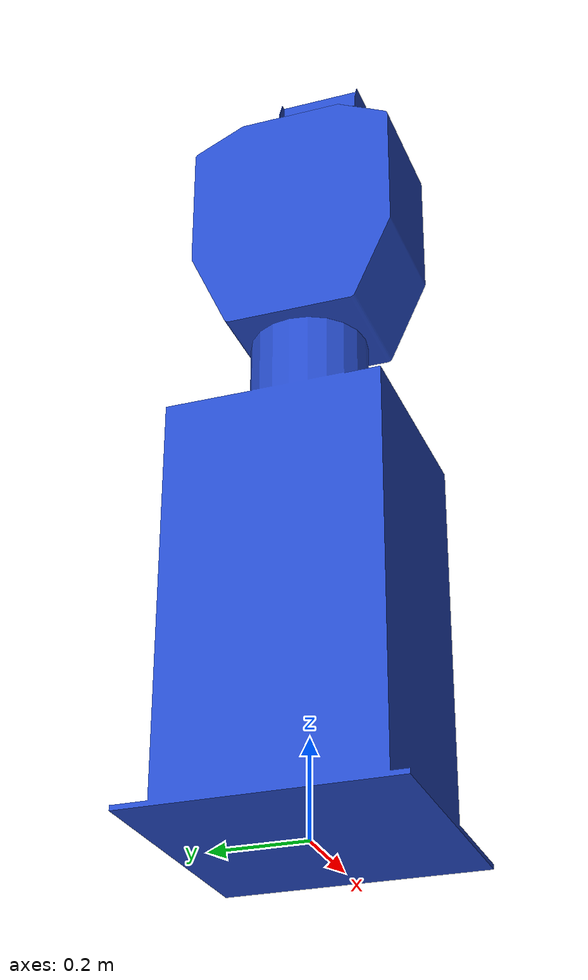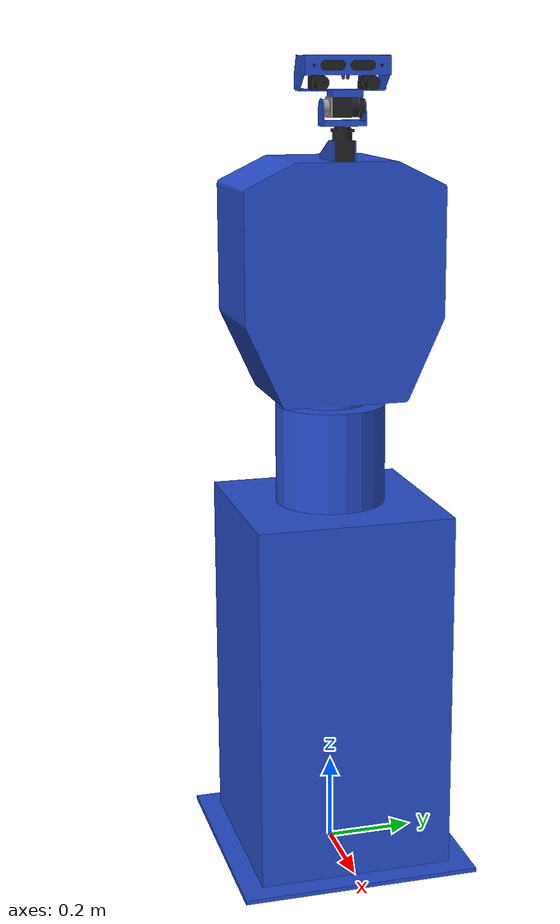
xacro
<?xml version="1.0"?>

<robot name="crom2_robot" xmlns:xacro="http://ros.org/wiki/xacro">

	<!-- Include all component files -->
   <xacro:include filename="$(find crom2_description)/urdf/material/materials.urdf.xacro" />
   <xacro:include filename="$(find crom2_description)/urdf/model/crom2_base.urdf.xacro" />
   <xacro:include filename="$(find crom2_description)/urdf/model/crom2_trunk.urdf.xacro" />
   <xacro:include filename="$(find crom2_description)/urdf/model/crom2_head.urdf.xacro" />
   <xacro:include filename="$(find crom2_description)/robots/crom2.gazebo.xacro" />
   <!--xacro:include filename="$(find crom2_description)/urdf/crom2_head.urdf.xacro" /-->

   <!-- Define a offsets using properties -->
   <property name="reverse" value="-1.0" />
   <property name="M_PI" value="3.1415926535897931" />
   <property name="base_offset_x" value="0.0" />
   <property name="base_offset_y" value="0.0" />
   <property name="base_offset_z" value="0.0" />
   <property name="trunk_offset_x" value="0.0" />
   <property name="trunk_offset_y" value="0.0" />
   <property name="trunk_offset_z" value="1.078" />
   <property name="head_offset_x" value="0.093" />
   <property name="head_offset_y" value="0.0" />
   <property name="head_offset_z" value="0.545" />

   <link name="base_footprint">
   </link>

   <!-- Add the base -->
   <base_model name="base" parent="base_footprint" color="Blue">
	    <origin xyz="${base_offset_x} ${base_offset_y} ${base_offset_z}" rpy="0 0 0" />
   </base_model>

   <!-- Attach the trunk -->
   <trunk_model name="waist" parent="base" color="Blue">
      <origin xyz="${trunk_offset_x} ${trunk_offset_y} ${trunk_offset_z}" rpy="0 0 0" />
   </trunk_model>

   <!-- Attach the head -->
   <head_model name="head" parent="waist" color="Blue">
      <origin xyz="${head_offset_x} ${head_offset_y} ${head_offset_z}" rpy="0 0 0" />
   </head_model>

   <!--Add robot gazebo macro -->
   <crom2_gazebo />

</robot>

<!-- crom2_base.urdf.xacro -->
<robot name="base" xmlns:xacro="http://ros.org/wiki/xacro">

  <xacro:include filename="$(find crom2_description)/urdf/gazebo/crom2_base.gazebo.xacro" />

  <!-- Define a number of dimensions using properties -->
  <property name="base_size_x" value="0.55" />
  <property name="base_size_y" value="0.55" />
  <property name="base_size_z" value="1.078" />

  <!-- The base xacro macro -->
  <xacro:macro name="base_model" params="name parent color *origin">
    <joint name="${name}_joint" type="fixed">
		<xacro:insert_block name="origin" />
		<parent link="${parent}"/>
		<child link="${name}_link" />
	</joint>
	<link name="${name}_link">
	  <visual>
        <origin xyz="0 0 0" rpy="0 0 0" />
        <geometry>
          <mesh filename = "package://crom2_description/meshes/CROM2_base.dae"/>
        </geometry>
        <material name="${color}" />
      </visual>
      <collision>
        <origin xyz="0 0 0" rpy="0 0 0" />
        <geometry>
          <mesh filename = "package://crom2_description/meshes/CROM2_base.dae"/>
        </geometry>
      </collision>
      <!-- Inertial same to crom -->
		<inertial>
		  <mass value="800.0" />
		  <origin xyz="0 0 0" />
		  <inertia
			ixx="3.737" ixy="0.008"  ixz="-0.144"
			iyy="8.311"  iyz="-0.004"
			izz="8.893" />
		</inertial>
    </link>

	<!--Add base_gazebo macro -->
	<base_gazebo name="${name}" />

  </xacro:macro>

 </robot>

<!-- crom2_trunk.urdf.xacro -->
<robot name="trunk" xmlns:xacro="http://ros.org/wiki/xacro">

  <xacro:include filename="$(find crom2_description)/urdf/gazebo/crom2_trunk.gazebo.xacro" />
  <xacro:include filename="$(find crom2_description)/urdf/transmission/crom2_trunk.transmission.xacro" />

  <!-- Define a number of dimensions using properties -->
  <property name="trunk_size_x" value="0.45" />
  <property name="trunk_size_y" value="0.284" />
  <property name="trunk_size_z" value="0.545" />

  <!-- Define the trunk -->
  <xacro:macro name="trunk_model" params="parent name color *origin">
    <joint name="${name}_joint" type="revolute">
		<xacro:insert_block name="origin" />
		<parent link="${parent}_link" />
		<child link="${name}_link" />
		<axis xyz="0 0 1" />
		<limit effort="1.5" velocity="1.0" lower="${reverse*M_PI/2}" upper="${M_PI/2}" />
	</joint>

	<link name="${name}_link">
		<inertial>
		  <mass value="22.07245" />
		  <origin xyz="0 0 0" />
		  <inertia
		  ixx="1259.328" ixy="-0.695"  ixz="15.497"
		  iyy="934.927"  iyz="-0.007"
		  izz="771.083"/>
		</inertial>
      <visual>
        <origin xyz="0 0 0" rpy="0 0 0" />
        <geometry>
          <mesh filename = "package://crom2_description/meshes/CROM2_trunk.dae"/>
        </geometry>
        <material name="${color}" />
      </visual>
      <collision>
        <origin xyz="0 0 0" rpy="0 0 0" />
        <geometry>
		  <mesh filename = "package://crom2_description/meshes/CROM2_trunk.dae"/>
        </geometry>
      </collision>
    </link>

    <!--Add trunk_gazebo macro -->
	<trunk_gazebo name="${name}" />

	<!--Add trunk_gazebo macro -->
	<trunk_transmission name="${name}" />

  </xacro:macro>

</robot>

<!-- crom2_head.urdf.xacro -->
<robot name="head" xmlns:xacro="http://ros.org/wiki/xacro">

	<xacro:include filename="$(find crom2_description)/urdf/gazebo/crom2_head.gazebo.xacro" />
	<xacro:include filename="$(find crom2_description)/urdf/transmission/crom2_head.transmission.xacro" />

	<!-- Define a number of dimensions using properties -->
	<xacro:property name="head_pan_joint_offset_z" value="0.111" />
	<xacro:property name="head_tilt_servo_offset" value="0.027" />
	<xacro:property name="head_size_x" value="0.188" />
	<xacro:property name="head_size_y" value="0.180" />
	<xacro:property name="head_size_z" value="0.217" />
	<xacro:property name="camara_frame_offset" value="0.021" />
	<xacro:property name="f10_camara_offset_x" value="0.0075" />
	<xacro:property name="f10_camara_offset_y" value="0.055" />
	<xacro:property name="f10_camara_offset_z" value="0.015" />
	<xacro:property name="f10_optical_offset" value="0.0145" />
	<xacro:property name="xtion_camara_offset_x" value="0.041" />
	<xacro:property name="xtion_camara_offset_y" value="0.0" />
	<xacro:property name="xtion_camara_offset_z" value="0.065" />
	<xacro:property name="head_joint_damping" value="0.0" />
	<xacro:property name="head_joint_friction" value="0.0" />
	<xacro:property name="head_joint_effort_limit" value="100.0" />_pan_joint
	<xacro:property name="head_joint_velocity_limit" value="100.0" />
	<xacro:property name="head_pan_joint_upper_limit" value="${M_PI/2}" />
	<xacro:property name="head_pan_joint_lower_limit" value="${reverse*M_PI/2}" />
	<xacro:property name="head_tilt_joint_upper_limit" value="1.0" />
	<xacro:property name="head_tilt_joint_lower_limit" value="-1.0" />
	<xacro:property name="asus_xtion_pro_depth_rel_rgb_py" value="0.0270" />
	<xacro:property name="asus_xtion_pro_cam_rel_rgb_py"   value="0.0220" />

	<!-- Define the head -->
	<xacro:macro name="head_model" params="parent name color *origin">

	<!-- BASE HEAD -->
		<joint name="${name}_frame_joint" type="fixed">
			<xacro:insert_block name="origin" />
			<parent link="${parent}_link"/>
			<child link="${name}_frame_link"/>
		</joint>

		<link name="${name}_frame_link">
		  <visual>
			<origin xyz="0 0 0" rpy="0 0 0" />
			<geometry>
			  <mesh filename = "package://crom2_description/meshes/CROM2_pantilt_1_1.dae"/>
			</geometry>
			<material name="Blue" />
		  </visual>
		  <collision>
			<origin xyz="0 0 0" rpy="0 0 0" />
			<geometry>
			  <mesh filename = "package://crom2_description/meshes/CROM2_pantilt_1_1.dae" />
			</geometry>
		  </collision>
		  <inertial>
			<origin xyz="0 0 0" rpy="0 0 0" />
			<mass value="1" />
			<inertia
			  ixx="1.0" ixy="0.0" ixz="0.0"
			  iyy="1.0" iyz="0.0"
			  izz="1.0" />
		  </inertial>
		</link>

	<!-- PAN HEAD -->
		<joint name="${name}_pan_motor_joint" type="fixed">
			<origin xyz="0 0 0" rpy="0 0 0" />
			<parent link="${name}_frame_link"/>
			<child link="${name}_pan_motor_link"/>
		</joint>

		<link name="${name}_pan_motor_link">
		  <visual>
			<origin xyz="0 0 0" rpy="0 0 0" />
			<geometry>
			  <mesh filename = "package://crom2_description/meshes/dynamixel_L42.dae" />
			</geometry>
			<material name="Black" />
		  </visual>
		  <collision>
			<origin xyz="0 0 0" rpy="0 0 0" />
			<geometry>
			  <mesh filename = "package://crom2_description/meshes/dynamixel_L42.dae" />
			</geometry>
		  </collision>
		  <inertial>
			<origin xyz="0 0 0" rpy="0 0 0" />
			<mass value="1" />
			<inertia
			  ixx="1.0" ixy="0.0" ixz="0.0"
			  iyy="1.0" iyz="0.0"
			  izz="1.0" />
		  </inertial>
		</link>

		<joint name="${name}_pan_joint" type="revolute">
		  <origin xyz="0 0 ${head_pan_joint_offset_z}" rpy="0 0 0" />
		  <parent link="${name}_pan_motor_link"/>
		  <child link="${name}_pan_link"/>
		  <axis xyz="0 0 1" />
		  <limit effort="${head_joint_effort_limit}" velocity="${head_joint_velocity_limit}" upper="${head_tilt_joint_upper_limit}" lower="${head_tilt_joint_lower_limit}"/>
		  <joint_properties damping="${head_joint_damping}" friction="{head_joint_friction}"/>
		</joint>

		<link name="${name}_pan_link">
		  <visual>
			<origin xyz="0 0 0" rpy="0 0 0" />
			<geometry>
			  <mesh filename = "package://crom2_description/meshes/CROM2_pantilt_2.dae" />
			</geometry>
			<material name="Blue" />
		  </visual>
		  <collision>
			<origin xyz="0 0 0" rpy="0 0 0" />
			<geometry>
			  <mesh filename = "package://crom2_description/meshes/CROM2_pantilt_2.dae" />
			</geometry>
		  </collision>
		  <inertial>
			<origin xyz="0 0 0" rpy="0 0 0" />
			<mass value="1" />
			<inertia
			  ixx="1.0" ixy="0.0" ixz="0.0"
			  iyy="1.0" iyz="0.0"
			  izz="1.0" />
		  </inertial>
		</link>

	<!-- TILT HEAD -->
		<joint name="${name}_tilt_joint" type="revolute">
		  <origin xyz="0 0 0" rpy="${reverse*M_PI/2} 0 0" />
		  <parent link="${name}_pan_link"/>
		  <child link="${name}_tilt_link"/>
		  <axis xyz="0 0 -1" />
		  <limit effort="${head_joint_effort_limit}" velocity="${head_joint_velocity_limit}" upper="${head_tilt_joint_upper_limit}" lower="${head_tilt_joint_lower_limit}"/>
		  <joint_properties damping="${head_joint_damping}" friction="{head_joint_friction}"/>
		</joint>

		<link name="${name}_tilt_link">
			<visual>
			<origin xyz="0 0 ${reverse*head_tilt_servo_offset}" rpy="0 0 0" />
			<geometry>
			  <mesh filename = "package://crom2_description/meshes/dynamixel_L42.dae" />
			</geometry>
			<material name="Black" />
		  </visual>
		  <collision>
			<origin xyz="0 0 ${head_tilt_servo_offset}" rpy="0 0 0" />
			<geometry>
			  <mesh filename = "package://crom2_description/meshes/dynamixel_L42.dae" />
			</geometry>
		  </collision>
		  <inertial>
			<origin xyz="0 0 ${head_tilt_servo_offset}" rpy="0 0 0" />
			<mass value="1" />
			<inertia
			  ixx="1.0" ixy="0.0" ixz="0.0"
			  iyy="1.0" iyz="0.0"
			  izz="1.0" />
		  </inertial>
		</link>

		<joint name="${name}_tilt_motor_joint" type="fixed">
		  <origin xyz="0 0 0" rpy="0 0 0" />
		  <parent link="${name}_pan_link"/>
		  <child link="${name}_tilt_motor_link"/>
		</joint>
		<link name="${name}_tilt_motor_link">
		  <visual>
			<origin xyz="0 ${reverse*head_tilt_servo_offset} 0" rpy="0 0 0" />
			<geometry>
			  <mesh filename = "package://crom2_description/meshes/CROM2_pantilt_3.dae" />
			</geometry>
			<material name="Grey" />
		  </visual>
		  <collision>
			<origin xyz="0 ${head_tilt_servo_offset} 0" rpy="0 0 0" />
			<geometry>
			  <mesh filename = "package://crom2_description/meshes/CROM2_pantilt_3.dae" />
			</geometry>
		  </collision>
		</link>

	<!-- CAMERA HEAD -->
		<joint name="${name}_camera_frame_joint" type="fixed">
		  <origin xyz="0 ${reverse*camara_frame_offset} 0" rpy="${M_PI/2}  0 0" />
		  <parent link="${name}_tilt_link"/>
		  <child link="${name}_camera_link"/>
		</joint>
		<link name="${name}_camera_link">
		  <visual>
			<origin xyz="0 0 0" rpy="0 0 0" />
			<geometry>
			  <mesh filename = "package://crom2_description/meshes/CROM2_pantilt_4.dae" />
			</geometry>
			<material name="Blue" />
		  </visual>
		  <collision>
			<origin xyz="0 0 0" rpy="0 0 0" />
			<geometry>
			  <mesh filename = "package://crom2_description/meshes/CROM2_pantilt_4.dae" />
			</geometry>
		  </collision>
		  <inertial>
			<origin xyz="0 0 0" rpy="0 0 0" />
			<mass value="1" />
			<inertia
			  ixx="1.0" ixy="0.0" ixz="0.0"
			  iyy="1.0" iyz="0.0"
			  izz="1.0" />
		  </inertial>
		</link>

	<!-- RIGHT CAMERA F10-->
		<joint name="${name}_f10_camera_right_joint" type="fixed">
		  <origin xyz="${f10_camara_offset_x} ${reverse*f10_camara_offset_y} ${f10_camara_offset_z}" rpy="0 0 0" />
		  <parent link="${name}_camera_link"/>
		  <child link="${name}_f10_camera_right_frame"/>
		</joint>
		<link name="${name}_f10_camera_right_frame">
		  <inertial>
			<mass value="0.01" />
			<origin xyz="0 0 0" />
			<inertia
				ixx="0.059" ixy="0.0"  ixz="0.0"
				iyy="0.055"  iyz="0.0"
				izz="0.059" />
		  </inertial>
		  <visual>
			<origin xyz="0 0 0" rpy="0 0 0" />
			<geometry>
			  <mesh filename = "package://crom2_description/meshes/FL2-010-R0-camera.dae" />
			</geometry>
			<material name="Black" />
		  </visual>
		  <collision>
			<origin xyz="0 0 0" rpy="0 0 0" />
			<geometry>
			  <mesh filename = "package://crom2_description/meshes/FL2-010-R0-camera.dae" />
			</geometry>
		  </collision>
		</link>

		<joint name="${name}_f10_camera_right_optical_joint" type="fixed">
		  <origin xyz="0.0 0.0 ${f10_optical_offset}" rpy="${M_PI/2} 0 ${M_PI/2}" />
		  <parent link="${name}_f10_camera_right_frame"/>
		  <child link="${name}_f10_camera_right_optical_frame"/>
		</joint>
		<link name="${name}_f10_camera_right_optical_frame">
		</link>

	<!-- LEFT CAMERA F10-->
		<joint name="${name}_f10_camera_left_joint" type="fixed">
		  <origin xyz="${f10_camara_offset_x} ${f10_camara_offset_y} ${f10_camara_offset_z}" rpy="0 0 0" />
		  <parent link="${name}_camera_link"/>
		  <child link="${name}_f10_camera_left_frame"/>
		</joint>
		<link name="${name}_f10_camera_left_frame">
		  <inertial>
			<mass value="0.01" />
			<origin xyz="0 0 0" />
			<inertia  ixx="0.059" ixy="0.0"  ixz="0.0"  iyy="0.055"  iyz="0.0"  izz="0.059" />
		  </inertial>
		  <visual>
			<origin xyz="0 0 0" rpy="0 0 0" />
			<geometry>
			  <mesh filename = "package://crom2_description/meshes/FL2-010-R0-camera.dae" />
			</geometry>
			<material name="Black" />
		  </visual>
		  <collision>
			<origin xyz="0 0 0" rpy="0 0 0" />
			<geometry>
			  <mesh filename = "package://crom2_description/meshes/FL2-010-R0-camera.dae" />
			</geometry>
		  </collision>
		</link>

		<joint name="${name}_f10_camera_left_optical_joint" type="fixed">
		  <origin xyz="0.0 0.0 ${f10_optical_offset}" rpy="${M_PI/2} 0 ${M_PI/2}" />
		  <parent link="${name}_f10_camera_left_frame"/>
		  <child link="${name}_f10_camera_left_optical_frame"/>
		</joint>
		<link name="${name}_f10_camera_left_optical_frame">
		</link>

		<!-- XTION CAMERA-->
		<joint name="${name}_xtion_camera_joint" type="fixed">

		  <origin xyz="${xtion_camara_offset_x} ${xtion_camara_offset_y} ${xtion_camara_offset_z}" rpy="0 0 0" />
		  <parent link="${name}_camera_link"/>
		  <child link="${name}_xtion_camera_link"/>
		</joint>
		<link name="${name}_xtion_camera_link">
		  <visual>
			<origin xyz="0 0 0" rpy="0 0 0" />
			<geometry>
			  <mesh filename = "package://crom2_description/meshes/xtion_camera.dae" />
			</geometry>
			<material name="Black" />
		  </visual>
		  <collision>
			<origin xyz="0 0 0" rpy="0 0 0" />
			<geometry>
			  <mesh filename = "package://crom2_description/meshes/xtion_camera.dae" />
			</geometry>
		  </collision>
		  <inertial>
			<origin xyz="0 0 0" rpy="0 0 0" />
			<mass value="1" />
			<inertia
			  ixx="1.0" ixy="0.0" ixz="0.0"
			  iyy="1.0" iyz="0.0"
			  izz="1.0" />
		  </inertial>
		</link>

		<joint name="${name}_xtion_camera_rgb_joint" type="fixed">
		  <origin xyz="0 ${asus_xtion_pro_cam_rel_rgb_py} 0"
				  rpy="0 0 0"/>
		  <parent link="${name}_xtion_camera_link"/>
		  <child link="${name}_xtion_camera_rgb_frame" />
		</joint>
		<link name="${name}_xtion_camera_rgb_frame"/>

		<joint name="${name}_xtion_camera_rgb_optical_joint" type="fixed">
		  <origin xyz="0 0 0" rpy="${-M_PI/2} 0 ${-M_PI/2}" />
		  <parent link="${name}_xtion_camera_rgb_frame" />
		  <child link="${name}_xtion_camera_rgb_optical_frame" />
		</joint>
		<link name="${name}_xtion_camera_rgb_optical_frame"/>

		<joint name="${name}_xtion_camera_depth_joint" type="fixed">
		  <origin xyz="0 ${asus_xtion_pro_depth_rel_rgb_py} 0" rpy="0 0 0" />
		  <parent link="${name}_xtion_camera_rgb_frame" />
		  <child link="${name}_xtion_camera_depth_frame" />
		</joint>
		<link name="${name}_xtion_camera_depth_frame"/>

		<joint name="${name}_xtion_camera_depth_optical_joint" type="fixed">
		  <origin xyz="0 0 0" rpy="${-M_PI/2} 0 ${-M_PI/2}" />
		  <parent link="${name}_xtion_camera_depth_frame" />
		  <child link="${name}_xtion_camera_depth_optical_frame" />
		</joint>
		<link name="${name}_xtion_camera_depth_optical_frame"/>

		<!--Add head_transmission macro -->
		<head_transmission name="${name}" />

		<!--Add head_gazebo macro -->
		<head_gazebo name="${name}" />

	</xacro:macro>

</robot>
